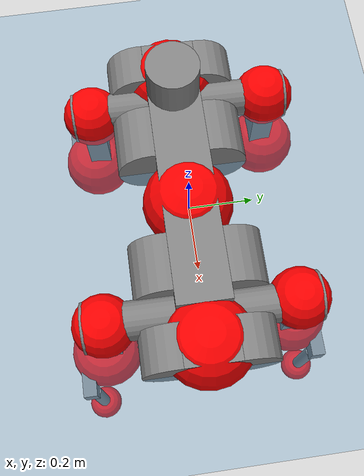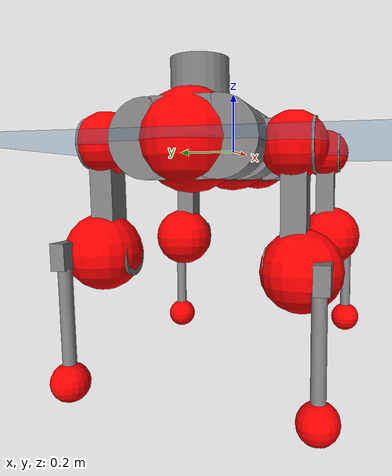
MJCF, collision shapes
<mujoco model="anymal_c">
  <compiler angle="radian" assetdir="assets" balanceinertia="true" inertiafromgeom="false"/>

  <option timestep="0.005" density="1.2" viscosity="2e-05"/>

  <size nkey="1"/>

  <visual>
    <quality shadowsize="8192"/>
    <map shadowclip="0.5"/>
  </visual>

  <default>
    <default class="/">
      <material specular="0" shininess="0.25"/>
      <geom contype="0" conaffinity="0" group="1" solref="-1000 -80"/>
      <site size="0.01 0.005 0.005" group="5"/>
      <general forcelimited="true" forcerange="-80 80" biastype="affine" gainprm="80" biasprm="0 -80 -2"/>
      <default class="anymal_c">
        <joint armature="0.01" damping="0.01" frictionloss="0.1"/>
        <default class="visual">
          <geom type="mesh" group="2"/>
          <default class="visual_zflip"/>
        </default>
        <default class="collision">
          <geom type="cylinder" group="3"/>
          <default class="foot">
            <geom size="0.03 0 0" type="sphere" condim="6" priority="1" friction="0.8 0.02 0.01" solimp="0.015 1 0.03"/>
          </default>
        </default>
      </default>
      <default class="reward_collision_sphere">
        <geom group="5" rgba="1 0 0 1"/>
      </default>
    </default>
  </default>

  <asset>
    <texture type="skybox" colorspace="auto" name="//unnamed_texture_0" builtin="gradient" rgb1="0.95 0.95 0.95" rgb2="0.95 0.95 0.95" width="100" height="600"/>
    <texture type="2d" colorspace="auto" name="texplane" builtin="checker" rgb1="0.345 0.575 0.748" rgb2="0.345 0.575 0.748" markrgb="1 1 1" width="512" height="512"/>
    <texture type="2d" colorspace="linear" name="base" file="base.png"/>
    <texture type="2d" colorspace="linear" name="top_shell" file="top_shell.png"/>
    <texture type="2d" colorspace="linear" name="bottom_shell" file="bottom_shell.png"/>
    <texture type="2d" colorspace="linear" name="remote" file="remote.png"/>
    <texture type="2d" colorspace="linear" name="hatch" file="hatch.png"/>
    <texture type="2d" colorspace="linear" name="handle" file="handle.png"/>
    <texture type="2d" colorspace="linear" name="face" file="face.png"/>
    <texture type="2d" colorspace="linear" name="battery" file="battery.png"/>
    <texture type="2d" colorspace="linear" name="lidar_cage" file="lidar_cage.png"/>
    <texture type="2d" colorspace="linear" name="depth_camera" file="depth_camera.png"/>
    <texture type="2d" colorspace="linear" name="wide_angle_camera" file="wide_angle_camera.png"/>
    <texture type="2d" colorspace="linear" name="lidar" file="lidar.png"/>
    <texture type="2d" colorspace="linear" name="drive" file="drive.png"/>
    <texture type="2d" colorspace="linear" name="hip_l" file="hip_l.png"/>
    <texture type="2d" colorspace="linear" name="shank_l" file="shank_l.png"/>
    <texture type="2d" colorspace="linear" name="foot" file="foot.png"/>
    <texture type="2d" colorspace="linear" name="thigh" file="thigh.png"/>
    <texture type="2d" colorspace="linear" name="shank_r" file="shank_r.png"/>
    <texture type="2d" colorspace="linear" name="hip_r" file="hip_r.png"/>
    <material name="MatPlane" class="/" texture="texplane" texuniform="true" texrepeat="2 2" specular="0.9" shininess="0.5"/>
    <material name="black_plastic" class="/" rgba="0.007 0.007 0.007 1"/>
    <material name="green" class="/" rgba="0.052 0.178 0.033 1"/>
    <material name="red" class="/" rgba="0.178 0.006 0.005 1"/>
    <material name="yellow" class="/" rgba="0.178 0.119 0.006 1"/>
    <material name="lwl" class="/" rgba="0.8 0.8 0.8 1"/>
    <material name="base" class="/" texture="base"/>
    <material name="top_shell" class="/" texture="top_shell"/>
    <material name="bottom_shell" class="/" texture="bottom_shell"/>
    <material name="hip_l" class="/" texture="hip_l"/>
    <material name="thigh" class="/" texture="thigh"/>
    <material name="shank_l" class="/" texture="shank_l"/>
    <material name="foot" class="/" texture="foot"/>
    <material name="hip_r" class="/" texture="hip_r"/>
    <material name="shank" class="/" texture="shank_r"/>
    <material name="hatch" class="/" texture="hatch"/>
    <material name="remote" class="/" texture="remote"/>
    <material name="handle" class="/" texture="handle"/>
    <material name="face" class="/" texture="face"/>
    <material name="depth_camera" class="/" texture="depth_camera"/>
    <material name="wide_angle_camera" class="/" texture="wide_angle_camera"/>
    <material name="battery" class="/" texture="battery"/>
    <material name="lidar_cage" class="/" texture="lidar_cage"/>
    <material name="lidar" class="/" texture="lidar"/>
    <material name="drive" class="/" texture="drive"/>
    <mesh name="base_0" class="/" file="base_0.obj"/>
    <mesh name="base_1" class="/" file="base_1.obj"/>
    <mesh name="base_2" class="/" file="base_2.obj"/>
    <mesh name="base_3" class="/" file="base_3.obj"/>
    <mesh name="base_4" class="/" file="base_4.obj"/>
    <mesh name="base_5" class="/" file="base_5.obj"/>
    <mesh name="top_shell" class="/" file="top_shell.obj"/>
    <mesh name="bottom_shell" class="/" file="bottom_shell.obj"/>
    <mesh name="remote" class="/" file="remote.obj"/>
    <mesh name="handle" class="/" file="handle.obj"/>
    <mesh name="face" class="/" file="face.obj"/>
    <mesh name="wide_angle_camera" class="/" file="wide_angle_camera.obj"/>
    <mesh name="depth_camera" class="/" file="depth_camera.obj"/>
    <mesh name="battery" class="/" file="battery.obj"/>
    <mesh name="lidar_cage" class="/" file="lidar_cage.obj"/>
    <mesh name="lidar" class="/" file="lidar.obj"/>
    <mesh name="drive" class="/" file="drive.obj"/>
    <mesh name="hip_l" class="/" file="hip_l.obj"/>
    <mesh name="thigh" class="/" file="thigh.obj"/>
    <mesh name="shank_l" class="/" file="shank_l.obj"/>
    <mesh name="foot" class="/" file="foot.obj"/>
    <mesh name="hip_r" class="/" file="hip_r.obj"/>
    <mesh name="hatch" class="/" file="hatch.obj"/>
    <mesh name="shank_r" class="/" file="shank_r.obj"/>
  </asset>

  <worldbody>
    <geom name="floor" class="/" size="100 100 0.125" type="plane" group="0" material="MatPlane"/>
    <light name="toplight_shadow" class="/" pos="0 0 5" dir="0.0990148 0.0990148 -0.990148" type="directional" ambient="0.04 0.04 0.04" diffuse="0.55 0.55 0.55" specular="0.12 0.12 0.12"/>
    <light name="toplight_fill" class="/" pos="0 0 5" dir="0.0990148 0.0990148 -0.990148" type="directional" castshadow="false" ambient="0.04 0.04 0.04" diffuse="0.3 0.3 0.3" specular="0.08 0.08 0.08"/>
    <body name="trunk" childclass="anymal_c" pos="-0.0134825 -0.000365266 0.0058314" quat="0.999982 -0.00496005 -0.00239475 -0.00241865">
      <inertial pos="0.0151943 -0.00553861 0.0615631" quat="0.506698 0.49658 0.497658 0.499001" mass="35.7015" diaginertia="0.522509 3.08336 0.490239"/>
      <joint name="//unnamed_joint_0" type="free" armature="0" damping="0" frictionloss="0"/>
      <geom name="//unnamed_geom_1" class="visual" material="green" mesh="base_0"/>
      <geom name="//unnamed_geom_2" class="visual" material="yellow" mesh="base_1"/>
      <geom name="//unnamed_geom_3" class="visual" material="red" mesh="base_2"/>
      <geom name="//unnamed_geom_4" class="visual" material="black_plastic" mesh="base_3"/>
      <geom name="//unnamed_geom_5" class="visual" material="lwl" mesh="base_4"/>
      <geom name="//unnamed_geom_6" class="visual" material="base" mesh="base_5"/>
      <geom name="trunk_1" class="collision" size="0.345697 0.0834441 0.107285" type="box"/>
      <geom name="trunk_2" class="collision" size="0.107285 0.0864243" pos="0.211463 0.0978884 0" quat="0.707107 0 0.707107 0"/>
      <geom name="trunk_3" class="collision" size="0.107285 0.0864243" pos="-0.211463 0.0978884 0" quat="0.707107 0 0.707107 0"/>
      <geom name="trunk_4" class="collision" size="0.107285 0.0864243" pos="0.211463 -0.0978884 0" quat="0.707107 0 0.707107 0"/>
      <geom name="trunk_5" class="collision" size="0.107285 0.0864243" pos="-0.211463 -0.0978884 0" quat="0.707107 0 0.707107 0"/>
      <geom name="//unnamed_geom_12" class="visual" material="top_shell" mesh="top_shell"/>
      <geom name="//unnamed_geom_13" class="visual" material="bottom_shell" mesh="bottom_shell"/>
      <geom name="//unnamed_geom_14" class="visual" material="remote" mesh="remote"/>
      <geom name="//unnamed_geom_15" class="visual" material="handle" mesh="handle"/>
      <geom name="//unnamed_geom_16" class="visual" pos="0.402994 0 0" quat="1 0 0 0" material="face" mesh="face"/>
      <geom name="trunk_6" class="collision" size="0.0655633 0.0834441 0.107285" pos="0.456468 0 0" type="box"/>
      <geom name="//unnamed_geom_18" class="collision" size="0.107285 0.0655633" pos="0.456468 0.0978884 0" quat="0.707107 0 0.707107 0"/>
      <geom name="//unnamed_geom_19" class="collision" size="0.107285 0.0655633" pos="0.456468 -0.0978884 0" quat="0.707107 0 0.707107 0"/>
      <geom name="//unnamed_geom_20" class="visual" pos="0.448845 0 -0.0369744" quat="0.965926 0 0.258819 0" material="depth_camera" mesh="depth_camera"/>
      <geom name="//unnamed_geom_21" class="visual" pos="0.49876 0 0.0180468" material="wide_angle_camera" mesh="wide_angle_camera"/>
      <geom name="//unnamed_geom_22" class="visual_zflip" pos="-0.402994 0 0" quat="0 0 0 1" material="face" mesh="face"/>
      <geom name="trunk_7" class="collision" size="0.0655633 0.0834441 0.107285" pos="-0.456468 0 0" quat="0 0 0 1" type="box"/>
      <geom name="//unnamed_geom_24" class="collision" size="0.107285 0.0655633" pos="-0.456468 -0.0978884 0" quat="0 -0.707107 0 0.707107"/>
      <geom name="//unnamed_geom_25" class="collision" size="0.107285 0.0655633" pos="-0.456468 0.0978884 0" quat="0 -0.707107 0 0.707107"/>
      <geom name="//unnamed_geom_26" class="visual" pos="-0.448845 0 -0.0369744" quat="0 -0.258819 0 0.965926" material="depth_camera" mesh="depth_camera"/>
      <geom name="//unnamed_geom_27" class="visual_zflip" pos="-0.49876 0 0.0180468" quat="0 0 0 1" material="wide_angle_camera" mesh="wide_angle_camera"/>
      <geom name="//unnamed_geom_28" class="visual" material="battery" mesh="battery"/>
      <geom name="//unnamed_geom_29" class="visual" pos="0 0.112524 0.0332476" quat="0.683013 -0.183013 0.183013 0.683013" material="depth_camera" mesh="depth_camera"/>
      <geom name="//unnamed_geom_30" class="visual" pos="0 -0.112524 0.0332476" quat="0.683013 0.183013 0.183013 -0.683013" material="depth_camera" mesh="depth_camera"/>
      <geom name="//unnamed_geom_31" class="visual" pos="-0.353896 0 0.0886064" quat="1 0 0 0" material="lidar_cage" mesh="lidar_cage"/>
      <geom name="trunk_8" class="collision" size="0.0834441 0.0715236" pos="-0.353896 0 0.160938"/>
      <geom name="//unnamed_geom_33" class="visual" pos="-0.353896 0.000167428 0.171426" quat="0.707107 0 0 -0.707107" material="lidar" mesh="lidar"/>
      <geom name="//unnamed_geom_34" class="visual" pos="0.291575 0.145366 3.32715e-09" quat="0.258819 0.965926 0 0" material="drive" mesh="drive"/>
      <geom name="//unnamed_geom_35" class="visual" pos="0.291575 -0.145366 -3.32715e-09" quat="0.258819 -0.965926 0 0" material="drive" mesh="drive"/>
      <geom name="//unnamed_geom_36" class="visual" pos="-0.291575 0.145366 -3.32715e-09" quat="0 0 0.965926 -0.258819" material="drive" mesh="drive"/>
      <geom name="//unnamed_geom_37" class="visual" pos="-0.291575 -0.145366 3.32715e-09" quat="0 0 -0.965926 -0.258819" material="drive" mesh="drive"/>
      <geom name="//unnamed_geom_38" class="visual" pos="0.11278 0 0.0880036" quat="1 0 0 0" material="hatch" mesh="hatch"/>
      <geom name="//unnamed_geom_39" class="reward_collision_sphere" size="0.143047"/>
      <geom name="//unnamed_geom_40" class="reward_collision_sphere" size="0.143047" pos="0.437509 0 0"/>
      <geom name="//unnamed_geom_41" class="reward_collision_sphere" size="0.143047" pos="-0.437509 0 0"/>
      <site name="imu" pos="0.241168 -0.022037 -0.00214203" size="0.0119206"/>
      <camera name="track" pos="0 -2.79681 0" quat="0.707107 0.707107 0 0" mode="trackcom"/>
      <camera name="ego_camera" pos="0.437509 0 -0.0482212" quat="-0.5 -0.5 0.5 0.5"/>
      <body name="LF_HIP" pos="0.292582 0.148723 -0.00509588" quat="0.256305 0.966595 0.000540591 0.000902384">
        <inertial pos="0.0529173 -0.0123401 -0.0091999" quat="-0.127351 0.71007 -0.134771 0.679278" mass="4.91405" diaginertia="0.00410803 0.0235304 0.00834223"/>
        <joint name="LF_HAA" pos="0 0 0" axis="0.997811 0.0622868 -0.0222384" stiffness="0.0219971" range="-0.979692 0.497374" armature="0.012927" damping="0" frictionloss="0.125801"/>
        <geom name="//unnamed_geom_42" class="visual" pos="0 0.000195721 -3.21471e-05" quat="0.258819 -0.965926 0 0" material="hip_l" mesh="hip_l"/>
        <geom name="//unnamed_geom_43" class="visual" pos="0.0582373 -0.0761095 -0.0425152" quat="0.183013 -0.683013 0.683013 0.183013" material="drive" mesh="drive"/>
        <geom name="//unnamed_geom_44" class="collision" size="0.059603 0.0834441" pos="0.0582373 -0.0167247 -0.00832418" quat="-0.353553 -0.612372 0.612372 -0.353553"/>
        <body name="LF_THIGH" pos="0.0520841 -0.101947 -0.0574353" quat="0.185192 -0.680264 0.685909 0.180204">
          <inertial pos="0.0211513 0.00795911 -0.284339" quat="0.993321 -0.00700822 -0.0795531 0.0832797" mass="5.74626" diaginertia="0.0270172 0.178549 0.00979556"/>
          <joint name="LF_HFE" pos="0 0 0" axis="0.999799 -0.0194245 0.00496175" stiffness="0.0685137" range="-3.251 3.12607" armature="0.0151475" damping="0.0172284" frictionloss="0.143989"/>
          <geom name="//unnamed_geom_45" class="visual" pos="-0.00847899 -1.33609e-05 0" quat="0.707107 0 0 -0.707107" material="thigh" mesh="thigh"/>
          <geom name="//unnamed_geom_46" class="collision" size="0.0774838 0.0476824" pos="0.0388897 0 0" quat="0.5 0.5 -0.5 -0.5"/>
          <geom name="//unnamed_geom_47" class="collision" size="0.0447022 0.0357618 0.168455" pos="0.0291673 0 -0.170358" quat="0.707107 0 0 -0.707107" type="box"/>
          <geom name="//unnamed_geom_48" class="visual" pos="0.0975159 0 -0.343576" quat="1 0 0 0" material="drive" mesh="drive"/>
          <geom name="//unnamed_geom_49" class="collision" size="0.059603 0.0834441" pos="0.0294589 0 -0.343576" quat="0.707107 0 0.707107 0"/>
          <geom name="//unnamed_geom_50" class="reward_collision_sphere" size="0.0953647" pos="0.0243061 0 0"/>
          <body name="LF_SHANK" pos="0.0971398 0.0119747 -0.346035" quat="0.999993 0.00309895 0.000252031 -0.00226049">
            <inertial pos="0.0155362 -0.0870875 -0.1055" quat="0.992633 -0.121136 -0.000272437 -0.00234672" mass="0.964525" diaginertia="0.00796733 0.0368176 0.00225493"/>
            <joint name="LF_KFE" pos="0 0 0" axis="0.999785 0.0204947 0.00314655" range="-2.90292 3.15214" armature="0.00845635" damping="0.0616263" frictionloss="0.0805926"/>
            <geom name="//unnamed_geom_51" class="visual" pos="-0.00276481 -0.0147421 0" quat="0.707107 0 0 -0.707107" material="shank_l" mesh="shank_l"/>
            <geom name="LF_kfe_act" class="collision" size="0.0715236 0.0238412" pos="0.0194448 0 0" quat="0.5 0.5 -0.5 -0.5"/>
            <geom name="//unnamed_geom_53" class="collision" size="0.0685422 0.040232 0.0226491" pos="0.0194448 -0.080407 0" quat="0.5 0.5 -0.5 -0.5" type="box"/>
            <geom name="//unnamed_geom_54" class="visual" pos="0.0126884 -0.127741 -0.407433" quat="0.382683 0 0 -0.92388" material="foot" mesh="foot"/>
            <geom name="LF_calf" class="collision" size="0.020861 0.168381" pos="0.0126878 -0.12299 -0.203716" quat="0.707107 0 0 -0.707107"/>
            <geom name="LF_foot" class="foot" size="0.0235925" pos="0.0126878 -0.12299 -0.380308" quat="0.707107 0 0 -0.707107"/>
            <geom name="//unnamed_geom_57" class="reward_collision_sphere" size="0.119206" pos="-0.0486121 0 0"/>
            <geom name="//unnamed_geom_58" class="reward_collision_sphere" size="0.059603" pos="0.0126878 -0.12299 -0.380308"/>
            <site name="LF_foot" class="foot" pos="0.0126878 -0.12299 -0.380308" quat="0.707107 0 0 -0.707107" size="0.0119206"/>
          </body>
        </body>
      </body>
      <body name="RF_HIP" pos="0.290937 -0.148899 0.0121285" quat="0.259784 -0.965655 -0.00155459 -0.00441969">
        <inertial pos="0.0487876 0.0325723 -0.0113291" quat="0.0992912 0.662114 0.105484 0.735269" mass="4.76747" diaginertia="0.00617407 0.0286539 0.0100132"/>
        <joint name="RF_HAA" pos="0 0 0" axis="0.999454 0.0330279 -4.4306e-05" stiffness="0.012485" range="-0.570765 0.731476" armature="0.0100905" damping="0.00984289" frictionloss="0.182649"/>
        <geom name="//unnamed_geom_59" class="visual" pos="0 -0.00019572 -3.2147e-05" quat="0.258819 0.965926 0 0" material="hip_r" mesh="hip_r"/>
        <geom name="//unnamed_geom_60" class="visual" pos="0.0582373 0.0761095 -0.0425152" quat="0.183013 0.683013 0.683013 -0.183013" material="drive" mesh="drive"/>
        <geom name="//unnamed_geom_61" class="collision" size="0.059603 0.0834441" pos="0.0582373 0.0167247 -0.00832418" quat="-0.353553 0.612372 0.612372 0.353553"/>
        <body name="RF_THIGH" pos="0.0598392 0.114795 -0.051537" quat="0.182997 0.68344 0.682658 -0.182757">
          <inertial pos="0.0230886 0.00949883 -0.296098" quat="0.993323 -0.0313112 -0.0929411 0.0607455" mass="5.0548" diaginertia="0.0282495 0.18004 0.00996241"/>
          <joint name="RF_HFE" pos="0 0 0" axis="0.999988 -0.0042751 -0.00242063" stiffness="0.0352341" range="-3.12836 2.93956" armature="0.0118675" damping="0.0201104" frictionloss="0.086853"/>
          <geom name="//unnamed_geom_62" class="visual" pos="-0.00847899 -1.33609e-05 0" quat="0.707107 0 0 -0.707107" material="thigh" mesh="thigh"/>
          <geom name="//unnamed_geom_63" class="collision" size="0.0774838 0.0476824" pos="0.0388897 0 0" quat="0.5 0.5 0.5 0.5"/>
          <geom name="//unnamed_geom_64" class="collision" size="0.0447022 0.0357618 0.168455" pos="0.0291673 0 -0.170358" quat="0.707107 0 0 0.707107" type="box"/>
          <geom name="//unnamed_geom_65" class="visual" pos="0.0975159 0 -0.343576" quat="1 0 0 0" material="drive" mesh="drive"/>
          <geom name="//unnamed_geom_66" class="collision" size="0.059603 0.0834441" pos="0.0294589 0 -0.343576" quat="0.707107 0 0.707107 0"/>
          <geom name="//unnamed_geom_67" class="reward_collision_sphere" size="0.0953647" pos="0.0243061 0 0"/>
          <body name="RF_SHANK" pos="0.0990621 0.00994179 -0.339754" quat="1 8.61036e-06 -7.69594e-05 -1.15525e-05">
            <inertial pos="0.00401394 0.0861781 -0.0958626" quat="0.995854 0.0700522 0.0107703 0.0570151" mass="0.987928" diaginertia="0.0087741 0.0495629 0.00317341"/>
            <joint name="RF_KFE" pos="0 0 0" axis="0.998054 0.0463109 0.0417618" stiffness="0.0540221" range="-3.12255 2.96542" armature="0.014355" damping="0" frictionloss="0.148356"/>
            <geom name="//unnamed_geom_68" class="visual" pos="-0.0027648 0.0147421 0" quat="0.707107 0 0 0.707107" material="shank" mesh="shank_r"/>
            <geom name="RF_kfe_act" class="collision" size="0.0715236 0.0238412" pos="0.0194448 0 0" quat="0.5 0.5 0.5 0.5"/>
            <geom name="//unnamed_geom_70" class="collision" size="0.0685422 0.040232 0.0226491" pos="0.0194448 0.080407 0" quat="0.5 0.5 0.5 0.5" type="box"/>
            <geom name="//unnamed_geom_71" class="visual" pos="0.0126871 0.127741 -0.407433" quat="0.382683 0 0 0.92388" material="foot" mesh="foot"/>
            <geom name="RF_calf" class="collision" size="0.020861 0.168381" pos="0.0126878 0.12299 -0.203716" quat="0.707107 0 0 0.707107"/>
            <geom name="RF_foot" class="foot" size="0.0400515" pos="0.0126878 0.12299 -0.380308" quat="0.707107 0 0 0.707107"/>
            <geom name="//unnamed_geom_74" class="reward_collision_sphere" size="0.119206" pos="-0.0486121 0 0"/>
            <geom name="//unnamed_geom_75" class="reward_collision_sphere" size="0.059603" pos="0.0126878 0.12299 -0.380308"/>
            <site name="RF_foot" class="foot" pos="0.0126878 0.12299 -0.380308" quat="0.707107 0 0 0.707107" size="0.0119206"/>
          </body>
        </body>
      </body>
      <body name="LH_HIP" pos="-0.292493 0.146773 0.00918297" quat="-0.000130015 -0.000155941 0.965777 -0.259375">
        <inertial pos="0.0506351 0.00884741 -0.000879942" quat="0.191055 0.676484 0.164585 0.691939" mass="3.88212" diaginertia="0.00495845 0.0252445 0.00696686"/>
        <joint name="LH_HAA" pos="0 0 0" axis="0.999986 -0.000166622 -0.00529246" range="-0.474414 0.866354" armature="0.0175049" damping="0.0217748" frictionloss="0.0515081"/>
        <geom name="//unnamed_geom_76" class="visual" pos="0 -0.00019572 -3.2147e-05" quat="-0.258819 -0.965926 0 0" material="hip_r" mesh="hip_r"/>
        <geom name="//unnamed_geom_77" class="visual" pos="0.0582373 0.0761095 -0.0425152" quat="0.183013 0.683013 0.683013 -0.183013" material="drive" mesh="drive"/>
        <geom name="//unnamed_geom_78" class="collision" size="0.059603 0.0834441" pos="0.0582373 0.0167247 -0.00832418" quat="-0.353553 0.612372 0.612372 0.353553"/>
        <body name="LH_THIGH" pos="0.059048 0.112485 -0.0618166" quat="0.183271 0.683024 0.682977 -0.182846">
          <inertial pos="0.0302944 -0.000983675 -0.297566" quat="0.990126 -0.00339364 -0.0988168 0.0993655" mass="4.21432" diaginertia="0.0255471 0.151207 0.00921484"/>
          <joint name="LH_HFE" pos="0 0 0" axis="0.999304 0.00159826 -0.0372563" range="-3.13 3.14747" armature="0.00675361" damping="0.0439031" frictionloss="0.118121"/>
          <geom name="//unnamed_geom_79" class="visual" pos="-0.00847899 -1.33609e-05 0" quat="0.707107 0 0 -0.707107" material="thigh" mesh="thigh"/>
          <geom name="//unnamed_geom_80" class="collision" size="0.0774838 0.0476824" pos="0.0388897 0 0" quat="0.5 0.5 -0.5 -0.5"/>
          <geom name="//unnamed_geom_81" class="collision" size="0.0447022 0.0357618 0.168455" pos="0.0291673 0 -0.170358" quat="0.707107 0 0 -0.707107" type="box"/>
          <geom name="//unnamed_geom_82" class="visual" pos="0.0975159 0 -0.343576" quat="1 0 0 0" material="drive" mesh="drive"/>
          <geom name="//unnamed_geom_83" class="collision" size="0.059603 0.0834441" pos="0.0294589 0 -0.343576" quat="0.707107 0 0.707107 0"/>
          <geom name="//unnamed_geom_84" class="reward_collision_sphere" size="0.0953647" pos="0.0243061 0 0"/>
          <body name="LH_SHANK" pos="0.0989619 0.000107434 -0.331502" quat="0.999999 0.00045001 0.000855254 0.000280198">
            <inertial pos="0.00950536 0.0726067 -0.0968687" quat="0.991398 0.130276 0.0125575 -0.000424031" mass="0.951892" diaginertia="0.0091013 0.0473201 0.00315617"/>
            <joint name="LH_KFE" pos="0 0 0" axis="0.999975 0.00706749 -0.000937062" stiffness="0.0674767" range="-3.16544 3.02972" armature="0.00813393" damping="0.0452692" frictionloss="0.0431841"/>
            <geom name="//unnamed_geom_85" class="visual" pos="-0.0027648 0.0147421 0" quat="-0.707107 0 0 -0.707107" material="shank" mesh="shank_r"/>
            <geom name="LH_kfe_act" class="collision" size="0.0715236 0.0238412" pos="0.0194448 0 0" quat="0.5 0.5 -0.5 -0.5"/>
            <geom name="//unnamed_geom_87" class="collision" size="0.0685422 0.040232 0.0226491" pos="0.0194448 0.080407 0" quat="0.5 0.5 -0.5 -0.5" type="box"/>
            <geom name="//unnamed_geom_88" class="visual" pos="0.0126871 0.127741 -0.407433" quat="-0.382683 0 0 -0.92388" material="foot" mesh="foot"/>
            <geom name="LH_calf" class="collision" size="0.020861 0.168381" pos="0.0126878 0.12299 -0.203716" quat="0.707107 0 0 -0.707107"/>
            <geom name="LH_foot" class="foot" size="0.0440228" pos="0.0126878 0.12299 -0.380308" quat="0.707107 0 0 -0.707107"/>
            <geom name="//unnamed_geom_91" class="reward_collision_sphere" size="0.119206" pos="-0.0486121 0 0"/>
            <geom name="//unnamed_geom_92" class="reward_collision_sphere" size="0.059603" pos="0.0126878 0.12299 -0.380308"/>
            <site name="LH_foot" class="foot" pos="0.0126878 0.12299 -0.380308" quat="0.707107 0 0 -0.707107" size="0.0119206"/>
          </body>
        </body>
      </body>
      <body name="RH_HIP" pos="-0.295691 -0.139035 0.00201331" quat="0.00564853 -0.00161311 -0.965351 -0.260888">
        <inertial pos="0.0422457 -0.0305501 0.00273464" quat="-0.110099 0.692781 -0.167961 0.69262" mass="4.78679" diaginertia="0.00507403 0.0263308 0.00849171"/>
        <joint name="RH_HAA" pos="0 0 0" axis="0.997821 -0.0645881 -0.0135083" range="-0.805036 0.468725" armature="0.0156996" damping="0.0177836" frictionloss="0.109149"/>
        <geom name="//unnamed_geom_93" class="visual" pos="0 0.000195721 -3.21471e-05" quat="-0.258819 0.965926 0 0" material="hip_l" mesh="hip_l"/>
        <geom name="//unnamed_geom_94" class="visual" pos="0.0582373 -0.0761095 -0.0425152" quat="-0.183013 0.683013 -0.683013 -0.183013" material="drive" mesh="drive"/>
        <geom name="//unnamed_geom_95" class="collision" size="0.059603 0.0834441" pos="0.0582373 -0.0167247 -0.00832418" quat="0.353553 0.612372 -0.612372 0.353553"/>
        <body name="RH_THIGH" pos="0.0611081 -0.100263 -0.0376292" quat="-0.183003 0.683427 -0.68241 -0.183724">
          <inertial pos="0.0306386 0.00122546 -0.295928" quat="0.993007 -0.00832879 -0.0768188 0.0892585" mass="5.91051" diaginertia="0.0267546 0.144 0.010845"/>
          <joint name="RH_HFE" pos="0 0 0" axis="0.999959 0.00887107 -0.00157121" range="-3.13132 2.92406" armature="0.0120787" damping="0.013865" frictionloss="0.108799"/>
          <geom name="//unnamed_geom_96" class="visual" pos="-0.00847899 -1.33609e-05 0" quat="0.707107 0 0 -0.707107" material="thigh" mesh="thigh"/>
          <geom name="//unnamed_geom_97" class="collision" size="0.0774838 0.0476824" pos="0.0388897 0 0" quat="0.5 0.5 0.5 0.5"/>
          <geom name="//unnamed_geom_98" class="collision" size="0.0447022 0.0357618 0.168455" pos="0.0291673 0 -0.170358" quat="0.707107 0 0 0.707107" type="box"/>
          <geom name="//unnamed_geom_99" class="visual" pos="0.0975159 0 -0.343576" quat="1 0 0 0" material="drive" mesh="drive"/>
          <geom name="//unnamed_geom_100" class="collision" size="0.059603 0.0834441" pos="0.0294589 0 -0.343576" quat="0.707107 0 0.707107 0"/>
          <geom name="//unnamed_geom_101" class="reward_collision_sphere" size="0.0953647" pos="0.0243061 0 0"/>
          <body name="RH_SHANK" pos="0.0960814 0.0015859 -0.349485" quat="1 -6.2723e-05 -4.24101e-05 1.4276e-05">
            <inertial pos="0.0143011 -0.0861728 -0.0987239" quat="0.990699 -0.128598 0.0287225 -0.0339479" mass="0.978242" diaginertia="0.00820761 0.0494281 0.00245082"/>
            <joint name="RH_KFE" pos="0 0 0" axis="0.998331 0.0527676 0.0234634" range="-3.05346 3.10965" armature="0.0137437" damping="0" frictionloss="0.136879"/>
            <geom name="//unnamed_geom_102" class="visual" pos="-0.00276481 -0.0147421 0" quat="0.707107 0 0 -0.707107" material="shank_l" mesh="shank_l"/>
            <geom name="RH_kfe_act" class="collision" size="0.0715236 0.0238412" pos="0.0194448 0 0" quat="0.5 0.5 0.5 0.5"/>
            <geom name="//unnamed_geom_104" class="collision" size="0.0685422 0.040232 0.0226491" pos="0.0194448 -0.080407 0" quat="0.5 0.5 0.5 0.5" type="box"/>
            <geom name="//unnamed_geom_105" class="visual" pos="0.0126884 -0.127741 -0.407433" quat="0.382683 0 0 -0.92388" material="foot" mesh="foot"/>
            <geom name="RH_calf" class="collision" size="0.020861 0.168381" pos="0.0126878 -0.12299 -0.203716" quat="0.707107 0 0 0.707107"/>
            <geom name="RH_foot" class="foot" size="0.0500798" pos="0.0126878 -0.12299 -0.380308" quat="0.707107 0 0 0.707107"/>
            <geom name="//unnamed_geom_108" class="reward_collision_sphere" size="0.119206" pos="-0.0486121 0 0"/>
            <geom name="//unnamed_geom_109" class="reward_collision_sphere" size="0.059603" pos="0.0126878 -0.12299 -0.380308"/>
            <site name="RH_foot" class="foot" pos="0.0126878 -0.12299 -0.380308" quat="0.707107 0 0 0.707107" size="0.0119206"/>
          </body>
        </body>
      </body>
    </body>
  </worldbody>

  <contact>
    <pair class="/" geom1="floor" geom2="LF_foot" name="//unnamed_contact_0"/>
    <pair class="/" geom1="floor" geom2="RF_foot" name="//unnamed_contact_1"/>
    <pair class="/" geom1="floor" geom2="LH_foot" name="//unnamed_contact_2"/>
    <pair class="/" geom1="floor" geom2="RH_foot" name="//unnamed_contact_3"/>
  </contact>

  <actuator>
    <general name="LF_HAA" class="/" joint="LF_HAA" forcerange="-99.8535 99.8535" gainprm="78.6746" biasprm="0 -78.6746 -2.90587"/>
    <general name="LF_HFE" class="/" joint="LF_HFE" forcerange="-118.862 118.862" gainprm="78.6746" biasprm="0 -78.6746 -2.90587"/>
    <general name="LF_KFE" class="/" joint="LF_KFE" forcerange="-97.8887 97.8887" gainprm="78.6746" biasprm="0 -78.6746 -2.90587"/>
    <general name="RF_HAA" class="/" joint="RF_HAA" forcerange="-93.6665 93.6665" gainprm="78.6746" biasprm="0 -78.6746 -2.90587"/>
    <general name="RF_HFE" class="/" joint="RF_HFE" forcerange="-72.4212 72.4212" gainprm="78.6746" biasprm="0 -78.6746 -2.90587"/>
    <general name="RF_KFE" class="/" joint="RF_KFE" forcerange="-92.3681 92.3681" gainprm="78.6746" biasprm="0 -78.6746 -2.90587"/>
    <general name="LH_HAA" class="/" joint="LH_HAA" forcerange="-50.7993 50.7993" gainprm="78.6746" biasprm="0 -78.6746 -2.90587"/>
    <general name="LH_HFE" class="/" joint="LH_HFE" forcerange="-117.517 117.517" gainprm="78.6746" biasprm="0 -78.6746 -2.90587"/>
    <general name="LH_KFE" class="/" joint="LH_KFE" forcerange="-139.954 139.954" gainprm="78.6746" biasprm="0 -78.6746 -2.90587"/>
    <general name="RH_HAA" class="/" joint="RH_HAA" forcerange="-124.909 124.909" gainprm="78.6746" biasprm="0 -78.6746 -2.90587"/>
    <general name="RH_HFE" class="/" joint="RH_HFE" forcerange="-52.3926 52.3926" gainprm="78.6746" biasprm="0 -78.6746 -2.90587"/>
    <general name="RH_KFE" class="/" joint="RH_KFE" forcerange="-92.7404 92.7404" gainprm="78.6746" biasprm="0 -78.6746 -2.90587"/>
  </actuator>

  <sensor>
    <gyro site="imu" name="imu_angular_velocity"/>
    <velocimeter site="imu" name="imu_linear_velocity"/>
    <framelinvel objtype="site" objname="LF_foot" name="LF_foot_global_linear_velocity"/>
    <framelinvel objtype="site" objname="RF_foot" name="RF_foot_global_linear_velocity"/>
    <framelinvel objtype="site" objname="LH_foot" name="LH_foot_global_linear_velocity"/>
    <framelinvel objtype="site" objname="RH_foot" name="RH_foot_global_linear_velocity"/>
  </sensor>

  <keyframe>
    <key name="home" qpos="0 0 0.55 1 0 0 0 0 0.4 -0.8 0 -0.4 0.8 0 -0.4 0.8 0 0.4 -0.8"/>
  </keyframe>
</mujoco>
